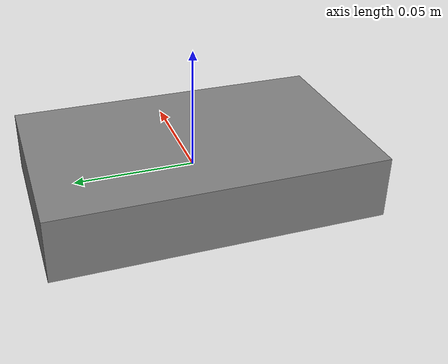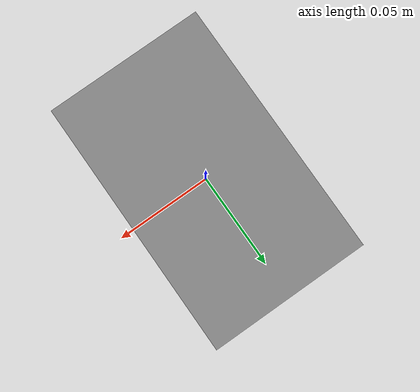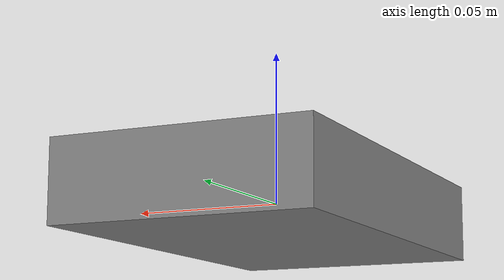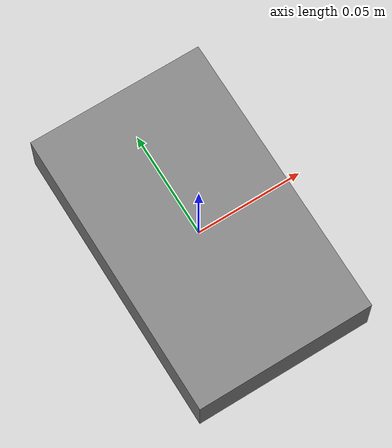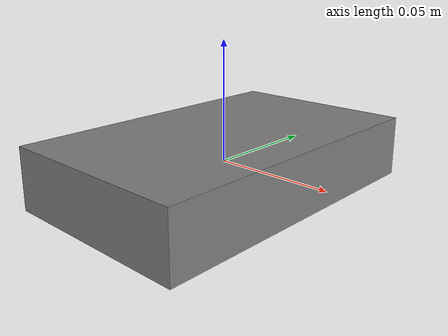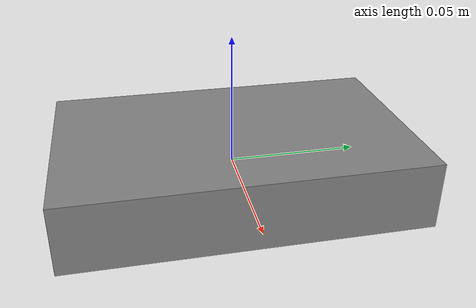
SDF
<?xml version="1.0" ?>
<sdf version="1.4">
    <model name='nasal_inflammation_capsul'>
      <link name='link'>
        <inertial>
          <pose>0 0 0 0 0 0</pose>
          <mass>0.1</mass>
          <inertia>
            <ixx>0.0001</ixx>
            <ixy>0</ixy>
            <ixz>0</ixz>
            <iyy>0.0001</iyy>
            <iyz>0</iyz>
            <izz>0.0001</izz>
          </inertia>
        </inertial>
        <visual name='capsul'>
          <pose>0 0 0 0 0 0</pose>
          <geometry>
            <box>
              <size>0.083 0.135 0.026</size>
            </box>
          </geometry>
          <material>
            <!-- nasal_inflammation_capsul -->
            <name>capsul</name>
            <ambient>1 1 1 1</ambient>
            <diffuse>0.5 0.5 0.5 1.0</diffuse>
            <specular>0 0 0 1.0</specular>
            <shininess>12.5</shininess>
            <pbr>
              <metal>
                <albedo_map>textures/nasal_inflammation_capsule.png</albedo_map>
                <max_anisotropy>16</max_anisotropy>
                <metalness>0</metalness>
              </metal>
            </pbr>
          </material>
        </visual>
        <collision name='collision_capsul'>
          <pose>0 0 0 0 0 0</pose>
          <geometry>
            <box>
              <size>0.083 0.135 0.026</size>
            </box>
          </geometry>
          <max_contacts>10</max_contacts>
          <surface>
            <bounce>
              <restitution_coefficient>0.2</restitution_coefficient>
              <threshold>0</threshold>
            </bounce>
            <friction>
              <ode/>
            </friction>
            <contact>
              <ode>
                 <max_vel>10</max_vel>
              </ode>
            </contact>
          </surface>
        </collision>
        <velocity_decay>
          <linear>0</linear>
          <angular>0</angular>
        </velocity_decay>
        <self_collide>0</self_collide>
        <kinematic>0</kinematic>
        <gravity>1</gravity>
      </link>
      <static>0</static>
    </model>
</sdf>
